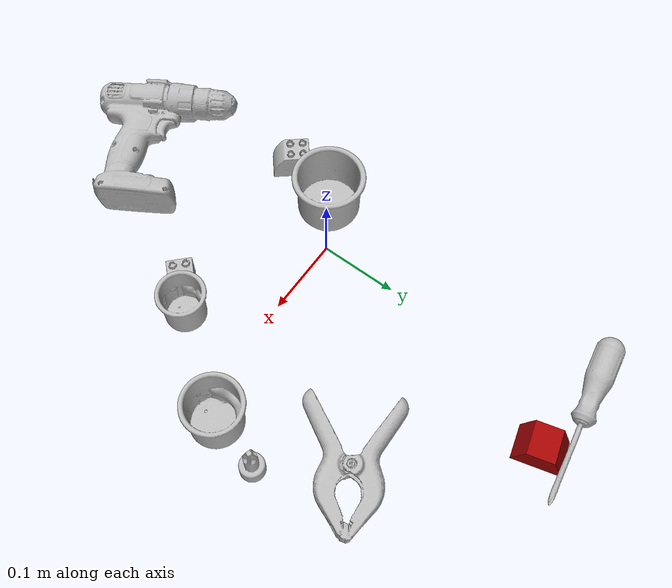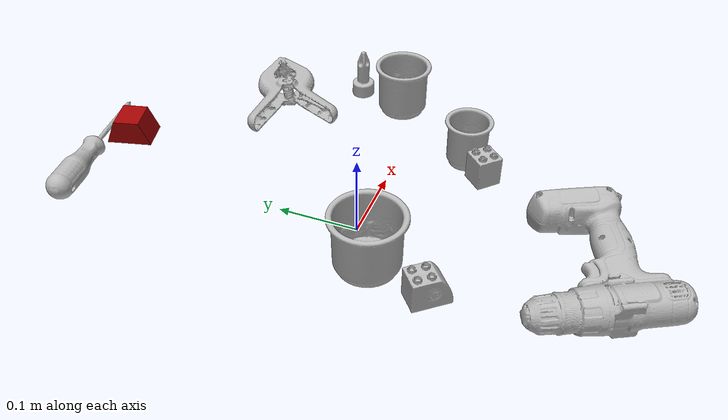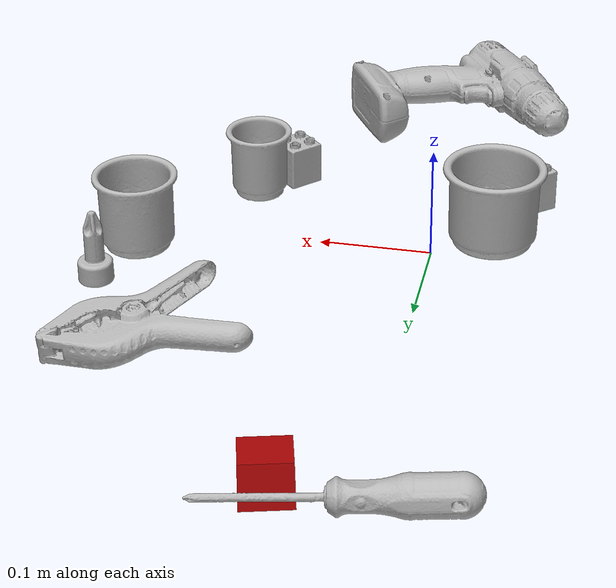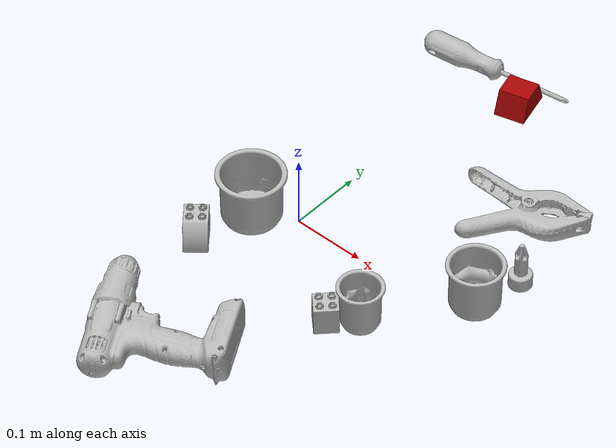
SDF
<sdf version="1.4">
  <world name="default">
    <light name="light1" type="point">
      <pose>0 0 1 0 0 0</pose>
      <diffuse>3 3 3 1</diffuse>
      <specular>3 3 3 1</specular>
    </light>
    <light name="light2" type="point">
      <pose>0 0.5 2 0 0 0</pose>
      <diffuse>1 1 1 1</diffuse>
      <specular>1 1 1 1</specular>
    </light>
    <light name="light3" type="point">
      <pose>0 0.5 2 0 0 0</pose>
      <diffuse>3 3 3 1</diffuse>
      <specular>3 3 3 1</specular>
    </light>
    <scene>
      <ambient>0.7 0.7 0.7</ambient>
    </scene>
    <model name="cup1">
      <link name="link_cup1">
        <collision name="default">
          <geometry>
            <mesh>
              <uri>model://b_cups/collision_meshes/collision.obj</uri>
              <scale>1.0 1.0 1.0</scale>
            </mesh>
          </geometry>
          <surface>
            <friction>
              <ode>
                <mu>0.5</mu>
                <mu2>0.5</mu2>
              </ode>
            </friction>
          <contact>
        <ode>
            <max_vel>0</max_vel>
            <min_depth>0.0001</min_depth>
            <kp>1e8</kp>
        </ode>
    </contact></surface>
        </collision>
        <visual name="default">
          <geometry>
            <mesh>
              <uri>model://b_cups/visual_meshes/visual.dae</uri>
              <scale>1.0 1.0 1.0</scale>
            </mesh>
          </geometry>
        </visual>
        <inertial>
          <mass>0.048613063991069794</mass>
          <pose>0.0005182003951631486 0.0018058597343042493 -0.0013381808530539274 0.11356326710502956 0.03872484102688303 -0.34569225342860055</pose>
          <inertia>
            <ixx>3.1820662e-05</ixx>
            <iyy>3.121653e-05</iyy>
            <izz>2.6776484e-05</izz>
            <ixy>0</ixy>
            <ixz>0</ixz>
            <iyz>0</iyz>
          </inertia>
        </inertial>
      </link>
      <pose>0.17518796026706696 -0.08209734410047531 0.031996019184589386 -0.0076263266231887715 -0.0038020464911539633 1.9513281891903946</pose>
    </model>
    <model name="cup2">
      <link name="link_cup2">
        <collision name="default">
          <geometry>
            <mesh>
              <uri>model://e_cups/collision_meshes/collision.obj</uri>
              <scale>1.0 1.0 1.0</scale>
            </mesh>
          </geometry>
          <surface>
            <friction>
              <ode>
                <mu>0.5</mu>
                <mu2>0.5</mu2>
              </ode>
            </friction>
          <contact>
        <ode>
            <max_vel>0</max_vel>
            <min_depth>0.0001</min_depth>
            <kp>1e8</kp>
        </ode>
    </contact></surface>
        </collision>
        <visual name="default">
          <geometry>
            <mesh>
              <uri>model://e_cups/visual_meshes/visual.dae</uri>
              <scale>1.0 1.0 1.0</scale>
            </mesh>
          </geometry>
        </visual>
        <inertial>
          <mass>0.07592208683490753</mass>
          <pose>0.0011355738388374448 0.002879784908145666 -0.003882972290739417 0.695241209711482 0.0876783799590152 -0.5235234031188288</pose>
          <inertia>
            <ixx>6.6944274e-05</ixx>
            <iyy>6.996636e-05</iyy>
            <izz>6.400647e-05</izz>
            <ixy>0</ixy>
            <ixz>0</ixz>
            <iyz>0</iyz>
          </inertia>
        </inertial>
      </link>
      <pose>0.2587600648403168 0.03416457027196884 0.03559989109635353 6.896330032531271e-05 -8.63957944878889e-05 1.4321226466430974</pose>
    </model>
    <model name="cup3">
      <link name="link_cup3">
        <collision name="default">
          <geometry>
            <mesh>
              <uri>model://h_cups/collision_meshes/collision.obj</uri>
              <scale>1.0 1.0 1.0</scale>
            </mesh>
          </geometry>
          <surface>
            <friction>
              <ode>
                <mu>0.5</mu>
                <mu2>0.5</mu2>
              </ode>
            </friction>
          <contact>
        <ode>
            <max_vel>0</max_vel>
            <min_depth>0.0001</min_depth>
            <kp>1e8</kp>
        </ode>
    </contact></surface>
        </collision>
        <visual name="default">
          <geometry>
            <mesh>
              <uri>model://h_cups/visual_meshes/visual.dae</uri>
              <scale>1.0 1.0 1.0</scale>
            </mesh>
          </geometry>
        </visual>
        <inertial>
          <mass>0.07054857164621353</mass>
          <pose>-2.7030857381760143e-05 0.0002301865170011297 -0.0018405391601845622 -0.024362378998248252 0.0654525662963329 0.12884761756284485</pose>
          <inertia>
            <ixx>9.1110225e-05</ixx>
            <iyy>9.002296e-05</iyy>
            <izz>9.5549614e-05</izz>
            <ixy>0</ixy>
            <ixz>0</ixz>
            <iyz>0</iyz>
          </inertia>
        </inertial>
      </link>
      <pose>-0.05028064548969269 -0.03255827724933624 0.03775801137089729 -1.195440728785748e-07 -3.611080625528579e-07 -2.7970823524985207</pose>
    </model>
    <model name="toy1">
      <link name="link_toy1">
        <collision name="default">
          <geometry>
            <mesh>
              <uri>model://f_lego_duplo/collision_meshes/collision.obj</uri>
              <scale>1.0 1.0 1.0</scale>
            </mesh>
          </geometry>
          <surface>
            <friction>
              <ode>
                <mu>0.5</mu>
                <mu2>0.5</mu2>
              </ode>
            </friction>
          <contact>
        <ode>
            <max_vel>0</max_vel>
            <min_depth>0.0001</min_depth>
            <kp>1e8</kp>
        </ode>
    </contact></surface>
        </collision>
        <visual name="default">
          <geometry>
            <mesh>
              <uri>model://f_lego_duplo/visual_meshes/visual.dae</uri>
              <scale>1.0 1.0 1.0</scale>
            </mesh>
          </geometry>
        </visual>
        <inertial>
          <mass>0.027637142688035965</mass>
          <pose>2.3694037736277096e-05 0.0001339315203949809 0.0018837873358279467 0.029838580482088747 -0.014425059949813135 -0.6756637855802661</pose>
          <inertia>
            <ixx>5.8398805e-06</ixx>
            <iyy>5.8919077e-06</iyy>
            <izz>5.069264e-06</izz>
            <ixy>0</ixy>
            <ixz>0</ixz>
            <iyz>0</iyz>
          </inertia>
        </inertial>
      </link>
      <pose>0.14536452293395996 -0.11218050867319107 0.021870866417884827 9.881932292159075e-07 -3.130333142668535e-05 0.8047124277208092</pose>
    </model>
    <model name="toy2">
      <link name="link_toy2">
        <collision name="default">
          <geometry>
            <mesh>
              <uri>model://d_toy_airplane/collision_meshes/collision.obj</uri>
              <scale>1.0 1.0 1.0</scale>
            </mesh>
          </geometry>
          <surface>
            <friction>
              <ode>
                <mu>0.5</mu>
                <mu2>0.5</mu2>
              </ode>
            </friction>
          <contact>
        <ode>
            <max_vel>0</max_vel>
            <min_depth>0.0001</min_depth>
            <kp>1e8</kp>
        </ode>
    </contact></surface>
        </collision>
        <visual name="default">
          <geometry>
            <mesh>
              <uri>model://d_toy_airplane/visual_meshes/visual.dae</uri>
              <scale>1.0 1.0 1.0</scale>
            </mesh>
          </geometry>
        </visual>
        <inertial>
          <mass>0.017859498038887978</mass>
          <pose>9.410335042048246e-05 -5.809318827232346e-05 -0.011728094890713692 0.0002667298520076861 0.004679004392369758 0.5194091511239993</pose>
          <inertia>
            <ixx>5.35393e-06</ixx>
            <iyy>5.3579683e-06</iyy>
            <izz>1.6163864e-06</izz>
            <ixy>0</ixy>
            <ixz>0</ixz>
            <iyz>0</iyz>
          </inertia>
        </inertial>
      </link>
      <pose>0.27689167857170105 0.09949454665184021 0.033338762819767 -3.989747650255644e-05 -0.00017509807561468823 1.2864270290029665</pose>
    </model>
    <model name="toy3">
      <link name="link_toy3">
        <collision name="default">
          <geometry>
            <mesh>
              <uri>model://prism/collision_meshes/collision.obj</uri>
              <scale>0.5 0.5 0.5</scale>
            </mesh>
          </geometry>
          <surface>
            <friction>
              <ode>
                <mu>0.5</mu>
                <mu2>0.5</mu2>
              </ode>
            </friction>
          <contact>
        <ode>
            <max_vel>0</max_vel>
            <min_depth>0.0001</min_depth>
            <kp>1e8</kp>
        </ode>
    </contact></surface>
        </collision>
        <visual name="default">
          <geometry>
            <mesh>
              <uri>model://prism/visual_meshes/visual.dae</uri>
              <scale>0.5 0.5 0.5</scale>
            </mesh>
          </geometry>
        </visual>
        <inertial>
          <mass>0.04761093109846115</mass>
          <pose>-4.92679828312248e-05 -2.480786349678965e-07 -0.001693455153144896 0.0 0.006559181231804993 0.0</pose>
          <inertia>
            <ixx>1.074207e-05</ixx>
            <iyy>1.2981929e-05</iyy>
            <izz>1.590131e-05</izz>
            <ixy>0</ixy>
            <ixz>0</ixz>
            <iyz>0</iyz>
          </inertia>
        </inertial>
      </link>
      <pose>0.06697336584329605 0.34981420636177063 0.016085000708699226 4.678621873407179e-08 2.5497866327189175e-08 1.8276907257928057</pose>
    </model>
    <model name="toy4">
      <link name="link_toy4">
        <collision name="default">
          <geometry>
            <mesh>
              <uri>model://d_lego_duplo/collision_meshes/collision.obj</uri>
              <scale>1.0 1.0 1.0</scale>
            </mesh>
          </geometry>
          <surface>
            <friction>
              <ode>
                <mu>0.5</mu>
                <mu2>0.5</mu2>
              </ode>
            </friction>
          <contact>
        <ode>
            <max_vel>0</max_vel>
            <min_depth>0.0001</min_depth>
            <kp>1e8</kp>
        </ode>
    </contact></surface>
        </collision>
        <visual name="default">
          <geometry>
            <mesh>
              <uri>model://d_lego_duplo/visual_meshes/visual.dae</uri>
              <scale>1.0 1.0 1.0</scale>
            </mesh>
          </geometry>
        </visual>
        <inertial>
          <mass>0.06000049039721489</mass>
          <pose>0.0028305640444159508 0.0001636611996218562 0.000858980929479003 0.08010949527318252 -0.38355210287845315 0.0010297055105996263</pose>
          <inertia>
            <ixx>1.1615211e-05</ixx>
            <iyy>1.6485134e-05</iyy>
            <izz>1.5897598e-05</izz>
            <ixy>0</ixy>
            <ixz>0</ixz>
            <iyz>0</iyz>
          </inertia>
        </inertial>
      </link>
      <pose>-0.07280686497688293 -0.10978870838880539 0.021740006282925606 -3.817864268751476e-07 2.1710837492549535e-07 2.272770064899431</pose>
    </model>
    <model name="hardware1">
      <link name="link_hardware1">
        <collision name="default">
          <geometry>
            <mesh>
              <uri>model://phillips_screwdriver/collision_meshes/collision.obj</uri>
              <scale>1.0 1.0 1.0</scale>
            </mesh>
          </geometry>
          <surface>
            <friction>
              <ode>
                <mu>0.5</mu>
                <mu2>0.5</mu2>
              </ode>
            </friction>
          <contact>
        <ode>
            <max_vel>0</max_vel>
            <min_depth>0.0001</min_depth>
            <kp>1e8</kp>
        </ode>
    </contact></surface>
        </collision>
        <visual name="default">
          <geometry>
            <mesh>
              <uri>model://phillips_screwdriver/visual_meshes/visual.dae</uri>
              <scale>1.0 1.0 1.0</scale>
            </mesh>
          </geometry>
        </visual>
        <inertial>
          <mass>0.11704345047473907</mass>
          <pose>-0.04777182638645172 0.0010362302418798208 -0.0004555549821816385 -0.1571668982332543 0.0058509943133797405 -0.002156735283865719</pose>
          <inertia>
            <ixx>1.3751404e-05</ixx>
            <iyy>0.00017241857</iyy>
            <izz>0.0001725651</izz>
            <ixy>0</ixy>
            <ixz>0</ixz>
            <iyz>0</iyz>
          </inertia>
        </inertial>
      </link>
      <pose>0.009481273591518402 0.36982858180999756 0.015409653075039387 0.06561039757074624 0.03756816261358809 0.1635597459783393</pose>
    </model>
    <model name="hardware2">
      <link name="link_hardware2">
        <collision name="default">
          <geometry>
            <mesh>
              <uri>model://large_clamp/collision_meshes/collision.obj</uri>
              <scale>1.0 1.0 1.0</scale>
            </mesh>
          </geometry>
          <surface>
            <friction>
              <ode>
                <mu>0.5</mu>
                <mu2>0.5</mu2>
              </ode>
            </friction>
          <contact>
        <ode>
            <max_vel>0</max_vel>
            <min_depth>0.0001</min_depth>
            <kp>1e8</kp>
        </ode>
    </contact></surface>
        </collision>
        <visual name="default">
          <geometry>
            <mesh>
              <uri>model://large_clamp/visual_meshes/visual.dae</uri>
              <scale>1.0 1.0 1.0</scale>
            </mesh>
          </geometry>
        </visual>
        <inertial>
          <mass>0.18953841924667358</mass>
          <pose>0.00636935792863369 0.0003585682134144008 -0.00018398056272417307 -0.002133075536327147 0.009671586607470332 0.026633167384546762</pose>
          <inertia>
            <ixx>0.00016722476</ixx>
            <iyy>0.0003175689</iyy>
            <izz>0.00045940367</izz>
            <ixy>0</ixy>
            <ixz>0</ixz>
            <iyz>0</iyz>
          </inertia>
        </inertial>
      </link>
      <pose>0.21296003460884094 0.18870636820793152 0.018504513427615166 -0.012237145482184669 0.04692782812427405 0.517727141124005</pose>
    </model>
    <model name="hardware3">
      <link name="link_hardware3">
        <collision name="default">
          <geometry>
            <mesh>
              <uri>model://power_drill/collision_meshes/collision.obj</uri>
              <scale>1.0 1.0 1.0</scale>
            </mesh>
          </geometry>
          <surface>
            <friction>
              <ode>
                <mu>0.5</mu>
                <mu2>0.5</mu2>
              </ode>
            </friction>
          <contact>
        <ode>
            <max_vel>0</max_vel>
            <min_depth>0.0001</min_depth>
            <kp>1e8</kp>
        </ode>
    </contact></surface>
        </collision>
        <visual name="default">
          <geometry>
            <mesh>
              <uri>model://power_drill/visual_meshes/visual.dae</uri>
              <scale>1.0 1.0 1.0</scale>
            </mesh>
          </geometry>
        </visual>
        <inertial>
          <mass>0.5207164287567139</mass>
          <pose>-0.014780543744564056 0.014369428157806396 0.0012414171360433102 0.004609162650930739 0.004073022346756156 -0.183626968168983</pose>
          <inertia>
            <ixx>0.0021219437</ixx>
            <iyy>0.00083487434</iyy>
            <izz>0.002802402</izz>
            <ixy>0</ixy>
            <ixz>0</ixz>
            <iyz>0</iyz>
          </inertia>
        </inertial>
      </link>
      <pose>0.01475314050912857 -0.25876542925834656 0.027312450110912323 -0.03030601231442862 -0.047252846589864915 2.0978263173467737</pose>
    </model>
  <physics type="ode">
      <max_contacts>50</max_contacts>
      <ode>
        <solver>
          <type>quick</type>
          <iters>75</iters>
        </solver>
        <constraints>
          <contact_max_correcting_vel>0</contact_max_correcting_vel>
          <contact_surface_layer>0</contact_surface_layer>
        </constraints>
      </ode>
    </physics></world>
</sdf>
